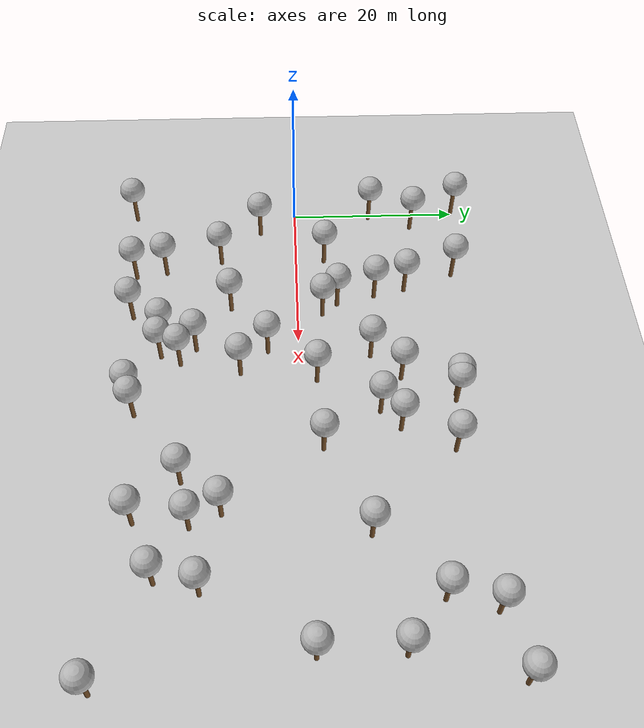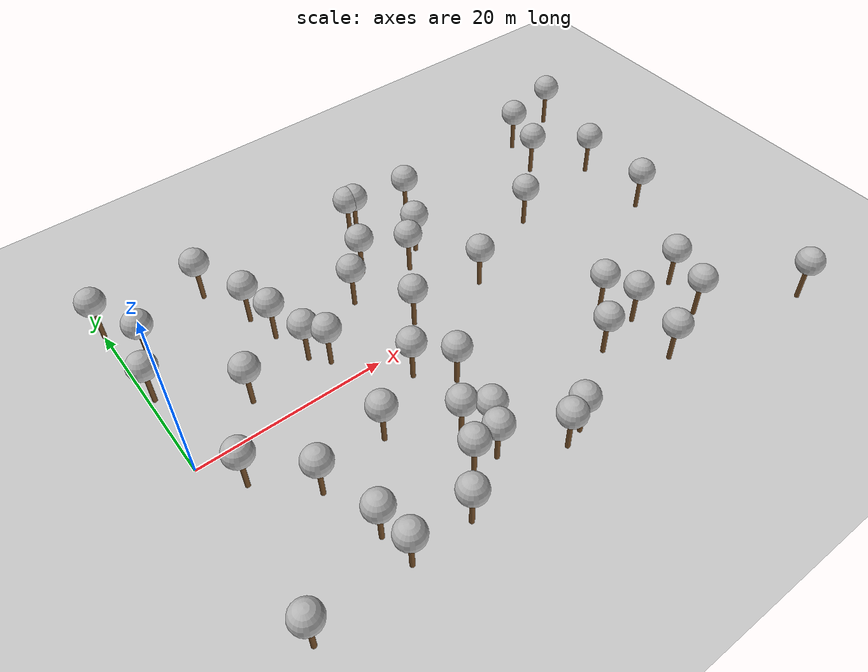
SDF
<sdf version='1.7'>
            <world name='default'>
                <light name='sun' type='directional'>
                <cast_shadows>1</cast_shadows>
                <pose>0 0 10 0 -0 0</pose>
                <diffuse>0.8 0.8 0.8 1</diffuse>
                <specular>0.2 0.2 0.2 1</specular>
                <attenuation>
                    <range>1000</range>
                    <constant>0.9</constant>
                    <linear>0.01</linear>
                    <quadratic>0.001</quadratic>
                </attenuation>
                <direction>-0.5 0.1 -0.9</direction>
                <spot>
                    <inner_angle>0</inner_angle>
                    <outer_angle>0</outer_angle>
                    <falloff>0</falloff>
                </spot>
                </light>
                <model name='ground_plane'>
                <static>1</static>
                <link name='link'>
                    <collision name='collision'>
                    <geometry>
                        <plane>
                        <normal>0 0 1</normal>
                        <size>100 100</size>
                        </plane>
                    </geometry>
                    <surface>
                        <contact>
                        <collide_bitmask>65535</collide_bitmask>
                        <ode/>
                        </contact>
                        <friction>
                        <ode>
                            <mu>100</mu>
                            <mu2>50</mu2>
                        </ode>
                        <torsional>
                            <ode/>
                        </torsional>
                        </friction>
                        <bounce/>
                    </surface>
                    <max_contacts>10</max_contacts>
                    </collision>
                    <visual name='visual'>
                    <cast_shadows>0</cast_shadows>
                    <geometry>
                        <plane>
                        <normal>0 0 1</normal>
                        <size>100 100</size>
                        </plane>
                    </geometry>
                    <material>
                        <script>
                        <uri>file://media/materials/scripts/gazebo.material</uri>
                        <name>Gazebo/Grey</name>
                        </script>
                    </material>
                    </visual>
                    <self_collide>0</self_collide>
                    <enable_wind>0</enable_wind>
                    <kinematic>0</kinematic>
                </link>
                </model>
                <gravity>0 0 -9.8</gravity>
                <magnetic_field>6e-06 2.3e-05 -4.2e-05</magnetic_field>
                <atmosphere type='adiabatic'/>
                <physics type='ode'>
                <max_step_size>0.001</max_step_size>
                <real_time_factor>1</real_time_factor>
                <real_time_update_rate>1000</real_time_update_rate>
                </physics>
                <scene>
                <ambient>0.4 0.4 0.4 1</ambient>
                <background>0.7 0.7 0.7 1</background>
                <shadows>1</shadows>
                </scene>
                <wind/>
                <spherical_coordinates>
                <surface_model>EARTH_WGS84</surface_model>
                <latitude_deg>0</latitude_deg>
                <longitude_deg>0</longitude_deg>
                <elevation>0</elevation>
                <heading_deg>0</heading_deg>
                </spherical_coordinates>

    <model name='tree_simple498'>
      <static>1</static>
      <link name='link'>
        <pose frame=''>0 0 0.1 0 -0 0</pose>
        <collision name='collision_trunk'>
          <pose frame=''>0 0 2 0 -0 0</pose>
          <geometry>
            <cylinder>
              <radius>0.25</radius>
              <length>4</length>
            </cylinder>
          </geometry>
        </collision>
        <collision name='collision_treetop'>
          <pose frame=''>0 0 5.2 0 -0 0</pose>
          <geometry>
            <sphere>
              <radius>1.5</radius>
            </sphere>
          </geometry>
        </collision>
        <visual name='trunk'>
          <pose frame=''>0 0 2 0 -0 0</pose>
          <geometry>
            <cylinder>
              <radius>0.25</radius>
              <length>4</length>
            </cylinder>
          </geometry>
          <material>
            <script>
              <uri>model://tree_simple/scripts</uri>
              <uri>model://tree_simple/materials/textures</uri>
              <name>TreeSimple/Trunk</name>
            </script>
          </material>
        </visual>
        <visual name='treetop'>
          <pose frame=''>0 0 5.2 0 -0 0</pose>
          <geometry>
            <sphere>
              <radius>1.5</radius>
            </sphere>
          </geometry>
          <material>
            <script>
              <uri>model://tree_simple/scripts</uri>
              <uri>model://tree_simple/materials/textures</uri>
              <name>TreeSimple/Treetop</name>
            </script>
          </material>
        </visual>
        <self_collide>0</self_collide>
        <kinematic>0</kinematic>
      </link>
      <pose frame=''>0.0 20.0 0 0 -0 0</pose>
    </model>
        <model name='tree_simple497'>
      <static>1</static>
      <link name='link'>
        <pose frame=''>0 0 0.1 0 -0 0</pose>
        <collision name='collision_trunk'>
          <pose frame=''>0 0 2 0 -0 0</pose>
          <geometry>
            <cylinder>
              <radius>0.25</radius>
              <length>4</length>
            </cylinder>
          </geometry>
        </collision>
        <collision name='collision_treetop'>
          <pose frame=''>0 0 5.2 0 -0 0</pose>
          <geometry>
            <sphere>
              <radius>1.5</radius>
            </sphere>
          </geometry>
        </collision>
        <visual name='trunk'>
          <pose frame=''>0 0 2 0 -0 0</pose>
          <geometry>
            <cylinder>
              <radius>0.25</radius>
              <length>4</length>
            </cylinder>
          </geometry>
          <material>
            <script>
              <uri>model://tree_simple/scripts</uri>
              <uri>model://tree_simple/materials/textures</uri>
              <name>TreeSimple/Trunk</name>
            </script>
          </material>
        </visual>
        <visual name='treetop'>
          <pose frame=''>0 0 5.2 0 -0 0</pose>
          <geometry>
            <sphere>
              <radius>1.5</radius>
            </sphere>
          </geometry>
          <material>
            <script>
              <uri>model://tree_simple/scripts</uri>
              <uri>model://tree_simple/materials/textures</uri>
              <name>TreeSimple/Treetop</name>
            </script>
          </material>
        </visual>
        <self_collide>0</self_collide>
        <kinematic>0</kinematic>
      </link>
      <pose frame=''>0.0 -20.0 0 0 -0 0</pose>
    </model>
        <model name='tree_simple496'>
      <static>1</static>
      <link name='link'>
        <pose frame=''>0 0 0.1 0 -0 0</pose>
        <collision name='collision_trunk'>
          <pose frame=''>0 0 2 0 -0 0</pose>
          <geometry>
            <cylinder>
              <radius>0.25</radius>
              <length>4</length>
            </cylinder>
          </geometry>
        </collision>
        <collision name='collision_treetop'>
          <pose frame=''>0 0 5.2 0 -0 0</pose>
          <geometry>
            <sphere>
              <radius>1.5</radius>
            </sphere>
          </geometry>
        </collision>
        <visual name='trunk'>
          <pose frame=''>0 0 2 0 -0 0</pose>
          <geometry>
            <cylinder>
              <radius>0.25</radius>
              <length>4</length>
            </cylinder>
          </geometry>
          <material>
            <script>
              <uri>model://tree_simple/scripts</uri>
              <uri>model://tree_simple/materials/textures</uri>
              <name>TreeSimple/Trunk</name>
            </script>
          </material>
        </visual>
        <visual name='treetop'>
          <pose frame=''>0 0 5.2 0 -0 0</pose>
          <geometry>
            <sphere>
              <radius>1.5</radius>
            </sphere>
          </geometry>
          <material>
            <script>
              <uri>model://tree_simple/scripts</uri>
              <uri>model://tree_simple/materials/textures</uri>
              <name>TreeSimple/Treetop</name>
            </script>
          </material>
        </visual>
        <self_collide>0</self_collide>
        <kinematic>0</kinematic>
      </link>
      <pose frame=''>60.0 20.0 0 0 -0 0</pose>
    </model>
        <model name='tree_simple495'>
      <static>1</static>
      <link name='link'>
        <pose frame=''>0 0 0.1 0 -0 0</pose>
        <collision name='collision_trunk'>
          <pose frame=''>0 0 2 0 -0 0</pose>
          <geometry>
            <cylinder>
              <radius>0.25</radius>
              <length>4</length>
            </cylinder>
          </geometry>
        </collision>
        <collision name='collision_treetop'>
          <pose frame=''>0 0 5.2 0 -0 0</pose>
          <geometry>
            <sphere>
              <radius>1.5</radius>
            </sphere>
          </geometry>
        </collision>
        <visual name='trunk'>
          <pose frame=''>0 0 2 0 -0 0</pose>
          <geometry>
            <cylinder>
              <radius>0.25</radius>
              <length>4</length>
            </cylinder>
          </geometry>
          <material>
            <script>
              <uri>model://tree_simple/scripts</uri>
              <uri>model://tree_simple/materials/textures</uri>
              <name>TreeSimple/Trunk</name>
            </script>
          </material>
        </visual>
        <visual name='treetop'>
          <pose frame=''>0 0 5.2 0 -0 0</pose>
          <geometry>
            <sphere>
              <radius>1.5</radius>
            </sphere>
          </geometry>
          <material>
            <script>
              <uri>model://tree_simple/scripts</uri>
              <uri>model://tree_simple/materials/textures</uri>
              <name>TreeSimple/Treetop</name>
            </script>
          </material>
        </visual>
        <self_collide>0</self_collide>
        <kinematic>0</kinematic>
      </link>
      <pose frame=''>60.0 -20.0 0 0 -0 0</pose>
    </model>
    <model name="tree_6_0"><pose frame="">29.99 -18.18 0 0 -0 0</pose><static>1</static><link name="link"><pose frame="">0 0 0.1 0 -0 0</pose><collision name="collision_trunk"><pose frame="">0 0 2 0 -0 0</pose><geometry><cylinder><radius>0.25</radius><length>4</length></cylinder></geometry></collision><collision name="collision_treetop"><pose frame="">0 0 5.2 0 -0 0</pose><geometry><sphere><radius>1.5</radius></sphere></geometry></collision><visual name="trunk"><pose frame="">0 0 2 0 -0 0</pose><geometry><cylinder><radius>0.25</radius><length>4</length></cylinder></geometry><material><script><uri>model://tree_simple/scripts</uri><uri>model://tree_simple/materials/textures</uri><name>TreeSimple/Trunk</name></script></material></visual><visual name="treetop"><pose frame="">0 0 5.2 0 -0 0</pose><geometry><sphere><radius>1.5</radius></sphere></geometry><material><script><uri>model://tree_simple/scripts</uri><uri>model://tree_simple/materials/textures</uri><name>TreeSimple/Treetop</name></script></material></visual><self_collide>0</self_collide><kinematic>0</kinematic></link></model><model name="tree_6_1"><pose frame="">19.44 -15.61 0 0 -0 0</pose><static>1</static><link name="link"><pose frame="">0 0 0.1 0 -0 0</pose><collision name="collision_trunk"><pose frame="">0 0 2 0 -0 0</pose><geometry><cylinder><radius>0.25</radius><length>4</length></cylinder></geometry></collision><collision name="collision_treetop"><pose frame="">0 0 5.2 0 -0 0</pose><geometry><sphere><radius>1.5</radius></sphere></geometry></collision><visual name="trunk"><pose frame="">0 0 2 0 -0 0</pose><geometry><cylinder><radius>0.25</radius><length>4</length></cylinder></geometry><material><script><uri>model://tree_simple/scripts</uri><uri>model://tree_simple/materials/textures</uri><name>TreeSimple/Trunk</name></script></material></visual><visual name="treetop"><pose frame="">0 0 5.2 0 -0 0</pose><geometry><sphere><radius>1.5</radius></sphere></geometry><material><script><uri>model://tree_simple/scripts</uri><uri>model://tree_simple/materials/textures</uri><name>TreeSimple/Treetop</name></script></material></visual><self_collide>0</self_collide><kinematic>0</kinematic></link></model><model name="tree_6_2"><pose frame="">22.59 8.17 0 0 -0 0</pose><static>1</static><link name="link"><pose frame="">0 0 0.1 0 -0 0</pose><collision name="collision_trunk"><pose frame="">0 0 2 0 -0 0</pose><geometry><cylinder><radius>0.25</radius><length>4</length></cylinder></geometry></collision><collision name="collision_treetop"><pose frame="">0 0 5.2 0 -0 0</pose><geometry><sphere><radius>1.5</radius></sphere></geometry></collision><visual name="trunk"><pose frame="">0 0 2 0 -0 0</pose><geometry><cylinder><radius>0.25</radius><length>4</length></cylinder></geometry><material><script><uri>model://tree_simple/scripts</uri><uri>model://tree_simple/materials/textures</uri><name>TreeSimple/Trunk</name></script></material></visual><visual name="treetop"><pose frame="">0 0 5.2 0 -0 0</pose><geometry><sphere><radius>1.5</radius></sphere></geometry><material><script><uri>model://tree_simple/scripts</uri><uri>model://tree_simple/materials/textures</uri><name>TreeSimple/Treetop</name></script></material></visual><self_collide>0</self_collide><kinematic>0</kinematic></link></model><model name="tree_6_3"><pose frame="">16.29 2.93 0 0 -0 0</pose><static>1</static><link name="link"><pose frame="">0 0 0.1 0 -0 0</pose><collision name="collision_trunk"><pose frame="">0 0 2 0 -0 0</pose><geometry><cylinder><radius>0.25</radius><length>4</length></cylinder></geometry></collision><collision name="collision_treetop"><pose frame="">0 0 5.2 0 -0 0</pose><geometry><sphere><radius>1.5</radius></sphere></geometry></collision><visual name="trunk"><pose frame="">0 0 2 0 -0 0</pose><geometry><cylinder><radius>0.25</radius><length>4</length></cylinder></geometry><material><script><uri>model://tree_simple/scripts</uri><uri>model://tree_simple/materials/textures</uri><name>TreeSimple/Trunk</name></script></material></visual><visual name="treetop"><pose frame="">0 0 5.2 0 -0 0</pose><geometry><sphere><radius>1.5</radius></sphere></geometry><material><script><uri>model://tree_simple/scripts</uri><uri>model://tree_simple/materials/textures</uri><name>TreeSimple/Treetop</name></script></material></visual><self_collide>0</self_collide><kinematic>0</kinematic></link></model><model name="tree_6_4"><pose frame="">10.53 18.81 0 0 -0 0</pose><static>1</static><link name="link"><pose frame="">0 0 0.1 0 -0 0</pose><collision name="collision_trunk"><pose frame="">0 0 2 0 -0 0</pose><geometry><cylinder><radius>0.25</radius><length>4</length></cylinder></geometry></collision><collision name="collision_treetop"><pose frame="">0 0 5.2 0 -0 0</pose><geometry><sphere><radius>1.5</radius></sphere></geometry></collision><visual name="trunk"><pose frame="">0 0 2 0 -0 0</pose><geometry><cylinder><radius>0.25</radius><length>4</length></cylinder></geometry><material><script><uri>model://tree_simple/scripts</uri><uri>model://tree_simple/materials/textures</uri><name>TreeSimple/Trunk</name></script></material></visual><visual name="treetop"><pose frame="">0 0 5.2 0 -0 0</pose><geometry><sphere><radius>1.5</radius></sphere></geometry><material><script><uri>model://tree_simple/scripts</uri><uri>model://tree_simple/materials/textures</uri><name>TreeSimple/Treetop</name></script></material></visual><self_collide>0</self_collide><kinematic>0</kinematic></link></model><model name="tree_6_5"><pose frame="">22.09 -15.66 0 0 -0 0</pose><static>1</static><link name="link"><pose frame="">0 0 0.1 0 -0 0</pose><collision name="collision_trunk"><pose frame="">0 0 2 0 -0 0</pose><geometry><cylinder><radius>0.25</radius><length>4</length></cylinder></geometry></collision><collision name="collision_treetop"><pose frame="">0 0 5.2 0 -0 0</pose><geometry><sphere><radius>1.5</radius></sphere></geometry></collision><visual name="trunk"><pose frame="">0 0 2 0 -0 0</pose><geometry><cylinder><radius>0.25</radius><length>4</length></cylinder></geometry><material><script><uri>model://tree_simple/scripts</uri><uri>model://tree_simple/materials/textures</uri><name>TreeSimple/Trunk</name></script></material></visual><visual name="treetop"><pose frame="">0 0 5.2 0 -0 0</pose><geometry><sphere><radius>1.5</radius></sphere></geometry><material><script><uri>model://tree_simple/scripts</uri><uri>model://tree_simple/materials/textures</uri><name>TreeSimple/Treetop</name></script></material></visual><self_collide>0</self_collide><kinematic>0</kinematic></link></model><model name="tree_6_6"><pose frame="">21.16 -11.69 0 0 -0 0</pose><static>1</static><link name="link"><pose frame="">0 0 0.1 0 -0 0</pose><collision name="collision_trunk"><pose frame="">0 0 2 0 -0 0</pose><geometry><cylinder><radius>0.25</radius><length>4</length></cylinder></geometry></collision><collision name="collision_treetop"><pose frame="">0 0 5.2 0 -0 0</pose><geometry><sphere><radius>1.5</radius></sphere></geometry></collision><visual name="trunk"><pose frame="">0 0 2 0 -0 0</pose><geometry><cylinder><radius>0.25</radius><length>4</length></cylinder></geometry><material><script><uri>model://tree_simple/scripts</uri><uri>model://tree_simple/materials/textures</uri><name>TreeSimple/Trunk</name></script></material></visual><visual name="treetop"><pose frame="">0 0 5.2 0 -0 0</pose><geometry><sphere><radius>1.5</radius></sphere></geometry><material><script><uri>model://tree_simple/scripts</uri><uri>model://tree_simple/materials/textures</uri><name>TreeSimple/Treetop</name></script></material></visual><self_collide>0</self_collide><kinematic>0</kinematic></link></model><model name="tree_6_7"><pose frame="">28.1 17.32 0 0 -0 0</pose><static>1</static><link name="link"><pose frame="">0 0 0.1 0 -0 0</pose><collision name="collision_trunk"><pose frame="">0 0 2 0 -0 0</pose><geometry><cylinder><radius>0.25</radius><length>4</length></cylinder></geometry></collision><collision name="collision_treetop"><pose frame="">0 0 5.2 0 -0 0</pose><geometry><sphere><radius>1.5</radius></sphere></geometry></collision><visual name="trunk"><pose frame="">0 0 2 0 -0 0</pose><geometry><cylinder><radius>0.25</radius><length>4</length></cylinder></geometry><material><script><uri>model://tree_simple/scripts</uri><uri>model://tree_simple/materials/textures</uri><name>TreeSimple/Trunk</name></script></material></visual><visual name="treetop"><pose frame="">0 0 5.2 0 -0 0</pose><geometry><sphere><radius>1.5</radius></sphere></geometry><material><script><uri>model://tree_simple/scripts</uri><uri>model://tree_simple/materials/textures</uri><name>TreeSimple/Treetop</name></script></material></visual><self_collide>0</self_collide><kinematic>0</kinematic></link></model><model name="tree_6_8"><pose frame="">25.76 11.4 0 0 -0 0</pose><static>1</static><link name="link"><pose frame="">0 0 0.1 0 -0 0</pose><collision name="collision_trunk"><pose frame="">0 0 2 0 -0 0</pose><geometry><cylinder><radius>0.25</radius><length>4</length></cylinder></geometry></collision><collision name="collision_treetop"><pose frame="">0 0 5.2 0 -0 0</pose><geometry><sphere><radius>1.5</radius></sphere></geometry></collision><visual name="trunk"><pose frame="">0 0 2 0 -0 0</pose><geometry><cylinder><radius>0.25</radius><length>4</length></cylinder></geometry><material><script><uri>model://tree_simple/scripts</uri><uri>model://tree_simple/materials/textures</uri><name>TreeSimple/Trunk</name></script></material></visual><visual name="treetop"><pose frame="">0 0 5.2 0 -0 0</pose><geometry><sphere><radius>1.5</radius></sphere></geometry><material><script><uri>model://tree_simple/scripts</uri><uri>model://tree_simple/materials/textures</uri><name>TreeSimple/Treetop</name></script></material></visual><self_collide>0</self_collide><kinematic>0</kinematic></link></model><model name="tree_6_9"><pose frame="">15.23 -7.77 0 0 -0 0</pose><static>1</static><link name="link"><pose frame="">0 0 0.1 0 -0 0</pose><collision name="collision_trunk"><pose frame="">0 0 2 0 -0 0</pose><geometry><cylinder><radius>0.25</radius><length>4</length></cylinder></geometry></collision><collision name="collision_treetop"><pose frame="">0 0 5.2 0 -0 0</pose><geometry><sphere><radius>1.5</radius></sphere></geometry></collision><visual name="trunk"><pose frame="">0 0 2 0 -0 0</pose><geometry><cylinder><radius>0.25</radius><length>4</length></cylinder></geometry><material><script><uri>model://tree_simple/scripts</uri><uri>model://tree_simple/materials/textures</uri><name>TreeSimple/Trunk</name></script></material></visual><visual name="treetop"><pose frame="">0 0 5.2 0 -0 0</pose><geometry><sphere><radius>1.5</radius></sphere></geometry><material><script><uri>model://tree_simple/scripts</uri><uri>model://tree_simple/materials/textures</uri><name>TreeSimple/Treetop</name></script></material></visual><self_collide>0</self_collide><kinematic>0</kinematic></link></model><model name="tree_6_10"><pose frame="">23.18 -13.41 0 0 -0 0</pose><static>1</static><link name="link"><pose frame="">0 0 0.1 0 -0 0</pose><collision name="collision_trunk"><pose frame="">0 0 2 0 -0 0</pose><geometry><cylinder><radius>0.25</radius><length>4</length></cylinder></geometry></collision><collision name="collision_treetop"><pose frame="">0 0 5.2 0 -0 0</pose><geometry><sphere><radius>1.5</radius></sphere></geometry></collision><visual name="trunk"><pose frame="">0 0 2 0 -0 0</pose><geometry><cylinder><radius>0.25</radius><length>4</length></cylinder></geometry><material><script><uri>model://tree_simple/scripts</uri><uri>model://tree_simple/materials/textures</uri><name>TreeSimple/Trunk</name></script></material></visual><visual name="treetop"><pose frame="">0 0 5.2 0 -0 0</pose><geometry><sphere><radius>1.5</radius></sphere></geometry><material><script><uri>model://tree_simple/scripts</uri><uri>model://tree_simple/materials/textures</uri><name>TreeSimple/Treetop</name></script></material></visual><self_collide>0</self_collide><kinematic>0</kinematic></link></model><model name="tree_6_11"><pose frame="">2.95 -4.31 0 0 -0 0</pose><static>1</static><link name="link"><pose frame="">0 0 0.1 0 -0 0</pose><collision name="collision_trunk"><pose frame="">0 0 2 0 -0 0</pose><geometry><cylinder><radius>0.25</radius><length>4</length></cylinder></geometry></collision><collision name="collision_treetop"><pose frame="">0 0 5.2 0 -0 0</pose><geometry><sphere><radius>1.5</radius></sphere></geometry></collision><visual name="trunk"><pose frame="">0 0 2 0 -0 0</pose><geometry><cylinder><radius>0.25</radius><length>4</length></cylinder></geometry><material><script><uri>model://tree_simple/scripts</uri><uri>model://tree_simple/materials/textures</uri><name>TreeSimple/Trunk</name></script></material></visual><visual name="treetop"><pose frame="">0 0 5.2 0 -0 0</pose><geometry><sphere><radius>1.5</radius></sphere></geometry><material><script><uri>model://tree_simple/scripts</uri><uri>model://tree_simple/materials/textures</uri><name>TreeSimple/Treetop</name></script></material></visual><self_collide>0</self_collide><kinematic>0</kinematic></link></model><model name="tree_6_12"><pose frame="">7.76 -9.1 0 0 -0 0</pose><static>1</static><link name="link"><pose frame="">0 0 0.1 0 -0 0</pose><collision name="collision_trunk"><pose frame="">0 0 2 0 -0 0</pose><geometry><cylinder><radius>0.25</radius><length>4</length></cylinder></geometry></collision><collision name="collision_treetop"><pose frame="">0 0 5.2 0 -0 0</pose><geometry><sphere><radius>1.5</radius></sphere></geometry></collision><visual name="trunk"><pose frame="">0 0 2 0 -0 0</pose><geometry><cylinder><radius>0.25</radius><length>4</length></cylinder></geometry><material><script><uri>model://tree_simple/scripts</uri><uri>model://tree_simple/materials/textures</uri><name>TreeSimple/Trunk</name></script></material></visual><visual name="treetop"><pose frame="">0 0 5.2 0 -0 0</pose><geometry><sphere><radius>1.5</radius></sphere></geometry><material><script><uri>model://tree_simple/scripts</uri><uri>model://tree_simple/materials/textures</uri><name>TreeSimple/Treetop</name></script></material></visual><self_collide>0</self_collide><kinematic>0</kinematic></link></model><model name="tree_6_13"><pose frame="">24.65 -6.59 0 0 -0 0</pose><static>1</static><link name="link"><pose frame="">0 0 0.1 0 -0 0</pose><collision name="collision_trunk"><pose frame="">0 0 2 0 -0 0</pose><geometry><cylinder><radius>0.25</radius><length>4</length></cylinder></geometry></collision><collision name="collision_treetop"><pose frame="">0 0 5.2 0 -0 0</pose><geometry><sphere><radius>1.5</radius></sphere></geometry></collision><visual name="trunk"><pose frame="">0 0 2 0 -0 0</pose><geometry><cylinder><radius>0.25</radius><length>4</length></cylinder></geometry><material><script><uri>model://tree_simple/scripts</uri><uri>model://tree_simple/materials/textures</uri><name>TreeSimple/Trunk</name></script></material></visual><visual name="treetop"><pose frame="">0 0 5.2 0 -0 0</pose><geometry><sphere><radius>1.5</radius></sphere></geometry><material><script><uri>model://tree_simple/scripts</uri><uri>model://tree_simple/materials/textures</uri><name>TreeSimple/Treetop</name></script></material></visual><self_collide>0</self_collide><kinematic>0</kinematic></link></model><model name="tree_6_14"><pose frame="">43.72 -11.57 0 0 -0 0</pose><static>1</static><link name="link"><pose frame="">0 0 0.1 0 -0 0</pose><collision name="collision_trunk"><pose frame="">0 0 2 0 -0 0</pose><geometry><cylinder><radius>0.25</radius><length>4</length></cylinder></geometry></collision><collision name="collision_treetop"><pose frame="">0 0 5.2 0 -0 0</pose><geometry><sphere><radius>1.5</radius></sphere></geometry></collision><visual name="trunk"><pose frame="">0 0 2 0 -0 0</pose><geometry><cylinder><radius>0.25</radius><length>4</length></cylinder></geometry><material><script><uri>model://tree_simple/scripts</uri><uri>model://tree_simple/materials/textures</uri><name>TreeSimple/Trunk</name></script></material></visual><visual name="treetop"><pose frame="">0 0 5.2 0 -0 0</pose><geometry><sphere><radius>1.5</radius></sphere></geometry><material><script><uri>model://tree_simple/scripts</uri><uri>model://tree_simple/materials/textures</uri><name>TreeSimple/Treetop</name></script></material></visual><self_collide>0</self_collide><kinematic>0</kinematic></link></model><model name="tree_6_15"><pose frame="">43.01 -17.36 0 0 -0 0</pose><static>1</static><link name="link"><pose frame="">0 0 0.1 0 -0 0</pose><collision name="collision_trunk"><pose frame="">0 0 2 0 -0 0</pose><geometry><cylinder><radius>0.25</radius><length>4</length></cylinder></geometry></collision><collision name="collision_treetop"><pose frame="">0 0 5.2 0 -0 0</pose><geometry><sphere><radius>1.5</radius></sphere></geometry></collision><visual name="trunk"><pose frame="">0 0 2 0 -0 0</pose><geometry><cylinder><radius>0.25</radius><length>4</length></cylinder></geometry><material><script><uri>model://tree_simple/scripts</uri><uri>model://tree_simple/materials/textures</uri><name>TreeSimple/Trunk</name></script></material></visual><visual name="treetop"><pose frame="">0 0 5.2 0 -0 0</pose><geometry><sphere><radius>1.5</radius></sphere></geometry><material><script><uri>model://tree_simple/scripts</uri><uri>model://tree_simple/materials/textures</uri><name>TreeSimple/Treetop</name></script></material></visual><self_collide>0</self_collide><kinematic>0</kinematic></link></model><model name="tree_6_16"><pose frame="">2.39 14.52 0 0 -0 0</pose><static>1</static><link name="link"><pose frame="">0 0 0.1 0 -0 0</pose><collision name="collision_trunk"><pose frame="">0 0 2 0 -0 0</pose><geometry><cylinder><radius>0.25</radius><length>4</length></cylinder></geometry></collision><collision name="collision_treetop"><pose frame="">0 0 5.2 0 -0 0</pose><geometry><sphere><radius>1.5</radius></sphere></geometry></collision><visual name="trunk"><pose frame="">0 0 2 0 -0 0</pose><geometry><cylinder><radius>0.25</radius><length>4</length></cylinder></geometry><material><script><uri>model://tree_simple/scripts</uri><uri>model://tree_simple/materials/textures</uri><name>TreeSimple/Trunk</name></script></material></visual><visual name="treetop"><pose frame="">0 0 5.2 0 -0 0</pose><geometry><sphere><radius>1.5</radius></sphere></geometry><material><script><uri>model://tree_simple/scripts</uri><uri>model://tree_simple/materials/textures</uri><name>TreeSimple/Treetop</name></script></material></visual><self_collide>0</self_collide><kinematic>0</kinematic></link></model><model name="tree_6_17"><pose frame="">57.2 0.8 0 0 -0 0</pose><static>1</static><link name="link"><pose frame="">0 0 0.1 0 -0 0</pose><collision name="collision_trunk"><pose frame="">0 0 2 0 -0 0</pose><geometry><cylinder><radius>0.25</radius><length>4</length></cylinder></geometry></collision><collision name="collision_treetop"><pose frame="">0 0 5.2 0 -0 0</pose><geometry><sphere><radius>1.5</radius></sphere></geometry></collision><visual name="trunk"><pose frame="">0 0 2 0 -0 0</pose><geometry><cylinder><radius>0.25</radius><length>4</length></cylinder></geometry><material><script><uri>model://tree_simple/scripts</uri><uri>model://tree_simple/materials/textures</uri><name>TreeSimple/Trunk</name></script></material></visual><visual name="treetop"><pose frame="">0 0 5.2 0 -0 0</pose><geometry><sphere><radius>1.5</radius></sphere></geometry><material><script><uri>model://tree_simple/scripts</uri><uri>model://tree_simple/materials/textures</uri><name>TreeSimple/Treetop</name></script></material></visual><self_collide>0</self_collide><kinematic>0</kinematic></link></model><model name="tree_6_18"><pose frame="">9.91 -19.33 0 0 -0 0</pose><static>1</static><link name="link"><pose frame="">0 0 0.1 0 -0 0</pose><collision name="collision_trunk"><pose frame="">0 0 2 0 -0 0</pose><geometry><cylinder><radius>0.25</radius><length>4</length></cylinder></geometry></collision><collision name="collision_treetop"><pose frame="">0 0 5.2 0 -0 0</pose><geometry><sphere><radius>1.5</radius></sphere></geometry></collision><visual name="trunk"><pose frame="">0 0 2 0 -0 0</pose><geometry><cylinder><radius>0.25</radius><length>4</length></cylinder></geometry><material><script><uri>model://tree_simple/scripts</uri><uri>model://tree_simple/materials/textures</uri><name>TreeSimple/Trunk</name></script></material></visual><visual name="treetop"><pose frame="">0 0 5.2 0 -0 0</pose><geometry><sphere><radius>1.5</radius></sphere></geometry><material><script><uri>model://tree_simple/scripts</uri><uri>model://tree_simple/materials/textures</uri><name>TreeSimple/Treetop</name></script></material></visual><self_collide>0</self_collide><kinematic>0</kinematic></link></model><model name="tree_6_19"><pose frame="">0.55 9.39 0 0 -0 0</pose><static>1</static><link name="link"><pose frame="">0 0 0.1 0 -0 0</pose><collision name="collision_trunk"><pose frame="">0 0 2 0 -0 0</pose><geometry><cylinder><radius>0.25</radius><length>4</length></cylinder></geometry></collision><collision name="collision_treetop"><pose frame="">0 0 5.2 0 -0 0</pose><geometry><sphere><radius>1.5</radius></sphere></geometry></collision><visual name="trunk"><pose frame="">0 0 2 0 -0 0</pose><geometry><cylinder><radius>0.25</radius><length>4</length></cylinder></geometry><material><script><uri>model://tree_simple/scripts</uri><uri>model://tree_simple/materials/textures</uri><name>TreeSimple/Trunk</name></script></material></visual><visual name="treetop"><pose frame="">0 0 5.2 0 -0 0</pose><geometry><sphere><radius>1.5</radius></sphere></geometry><material><script><uri>model://tree_simple/scripts</uri><uri>model://tree_simple/materials/textures</uri><name>TreeSimple/Treetop</name></script></material></visual><self_collide>0</self_collide><kinematic>0</kinematic></link></model><model name="tree_6_20"><pose frame="">32.51 10.82 0 0 -0 0</pose><static>1</static><link name="link"><pose frame="">0 0 0.1 0 -0 0</pose><collision name="collision_trunk"><pose frame="">0 0 2 0 -0 0</pose><geometry><cylinder><radius>0.25</radius><length>4</length></cylinder></geometry></collision><collision name="collision_treetop"><pose frame="">0 0 5.2 0 -0 0</pose><geometry><sphere><radius>1.5</radius></sphere></geometry></collision><visual name="trunk"><pose frame="">0 0 2 0 -0 0</pose><geometry><cylinder><radius>0.25</radius><length>4</length></cylinder></geometry><material><script><uri>model://tree_simple/scripts</uri><uri>model://tree_simple/materials/textures</uri><name>TreeSimple/Trunk</name></script></material></visual><visual name="treetop"><pose frame="">0 0 5.2 0 -0 0</pose><geometry><sphere><radius>1.5</radius></sphere></geometry><material><script><uri>model://tree_simple/scripts</uri><uri>model://tree_simple/materials/textures</uri><name>TreeSimple/Treetop</name></script></material></visual><self_collide>0</self_collide><kinematic>0</kinematic></link></model>
    <model name="tree_1_21">
  <pose frame="">27.92 -18.76 0 0 -0 0</pose>
  <static>1</static>
  <link name="link">
    <pose frame="">0 0 0.1 0 -0 0</pose>
    <collision name="collision_trunk"><pose frame="">0 0 2 0 -0 0</pose><geometry><cylinder><radius>0.25</radius><length>4</length></cylinder></geometry></collision>
    <collision name="collision_treetop"><pose frame="">0 0 5.2 0 -0 0</pose><geometry><sphere><radius>1.5</radius></sphere></geometry></collision>
    <visual name="trunk"><pose frame="">0 0 2 0 -0 0</pose><geometry><cylinder><radius>0.25</radius><length>4</length></cylinder></geometry><material><script><uri>model://tree_simple/scripts</uri><uri>model://tree_simple/materials/textures</uri><name>TreeSimple/Trunk</name></script></material></visual>
    <visual name="treetop"><pose frame="">0 0 5.2 0 -0 0</pose><geometry><sphere><radius>1.5</radius></sphere></geometry><material><script><uri>model://tree_simple/scripts</uri><uri>model://tree_simple/materials/textures</uri><name>TreeSimple/Treetop</name></script></material></visual>
    <self_collide>0</self_collide><kinematic>0</kinematic>
  </link>
</model>
<model name="tree_1_22">
  <pose frame="">14.81 4.73 0 0 -0 0</pose>
  <static>1</static>
  <link name="link">
    <pose frame="">0 0 0.1 0 -0 0</pose>
    <collision name="collision_trunk"><pose frame="">0 0 2 0 -0 0</pose><geometry><cylinder><radius>0.25</radius><length>4</length></cylinder></geometry></collision>
    <collision name="collision_treetop"><pose frame="">0 0 5.2 0 -0 0</pose><geometry><sphere><radius>1.5</radius></sphere></geometry></collision>
    <visual name="trunk"><pose frame="">0 0 2 0 -0 0</pose><geometry><cylinder><radius>0.25</radius><length>4</length></cylinder></geometry><material><script><uri>model://tree_simple/scripts</uri><uri>model://tree_simple/materials/textures</uri><name>TreeSimple/Trunk</name></script></material></visual>
    <visual name="treetop"><pose frame="">0 0 5.2 0 -0 0</pose><geometry><sphere><radius>1.5</radius></sphere></geometry><material><script><uri>model://tree_simple/scripts</uri><uri>model://tree_simple/materials/textures</uri><name>TreeSimple/Treetop</name></script></material></visual>
    <self_collide>0</self_collide><kinematic>0</kinematic>
  </link>
</model>
<model name="tree_1_23">
  <pose frame="">50.73 -10.28 0 0 -0 0</pose>
  <static>1</static>
  <link name="link">
    <pose frame="">0 0 0.1 0 -0 0</pose>
    <collision name="collision_trunk"><pose frame="">0 0 2 0 -0 0</pose><geometry><cylinder><radius>0.25</radius><length>4</length></cylinder></geometry></collision>
    <collision name="collision_treetop"><pose frame="">0 0 5.2 0 -0 0</pose><geometry><sphere><radius>1.5</radius></sphere></geometry></collision>
    <visual name="trunk"><pose frame="">0 0 2 0 -0 0</pose><geometry><cylinder><radius>0.25</radius><length>4</length></cylinder></geometry><material><script><uri>model://tree_simple/scripts</uri><uri>model://tree_simple/materials/textures</uri><name>TreeSimple/Trunk</name></script></material></visual>
    <visual name="treetop"><pose frame="">0 0 5.2 0 -0 0</pose><geometry><sphere><radius>1.5</radius></sphere></geometry><material><script><uri>model://tree_simple/scripts</uri><uri>model://tree_simple/materials/textures</uri><name>TreeSimple/Treetop</name></script></material></visual>
    <self_collide>0</self_collide><kinematic>0</kinematic>
  </link>
</model>
<model name="tree_1_24">
  <pose frame="">35.27 16.45 0 0 -0 0</pose>
  <static>1</static>
  <link name="link">
    <pose frame="">0 0 0.1 0 -0 0</pose>
    <collision name="collision_trunk"><pose frame="">0 0 2 0 -0 0</pose><geometry><cylinder><radius>0.25</radius><length>4</length></cylinder></geometry></collision>
    <collision name="collision_treetop"><pose frame="">0 0 5.2 0 -0 0</pose><geometry><sphere><radius>1.5</radius></sphere></geometry></collision>
    <visual name="trunk"><pose frame="">0 0 2 0 -0 0</pose><geometry><cylinder><radius>0.25</radius><length>4</length></cylinder></geometry><material><script><uri>model://tree_simple/scripts</uri><uri>model://tree_simple/materials/textures</uri><name>TreeSimple/Trunk</name></script></material></visual>
    <visual name="treetop"><pose frame="">0 0 5.2 0 -0 0</pose><geometry><sphere><radius>1.5</radius></sphere></geometry><material><script><uri>model://tree_simple/scripts</uri><uri>model://tree_simple/materials/textures</uri><name>TreeSimple/Treetop</name></script></material></visual>
    <self_collide>0</self_collide><kinematic>0</kinematic>
  </link>
</model>
<model name="tree_1_25">
  <pose frame="">21.64 -3.49 0 0 -0 0</pose>
  <static>1</static>
  <link name="link">
    <pose frame="">0 0 0.1 0 -0 0</pose>
    <collision name="collision_trunk"><pose frame="">0 0 2 0 -0 0</pose><geometry><cylinder><radius>0.25</radius><length>4</length></cylinder></geometry></collision>
    <collision name="collision_treetop"><pose frame="">0 0 5.2 0 -0 0</pose><geometry><sphere><radius>1.5</radius></sphere></geometry></collision>
    <visual name="trunk"><pose frame="">0 0 2 0 -0 0</pose><geometry><cylinder><radius>0.25</radius><length>4</length></cylinder></geometry><material><script><uri>model://tree_simple/scripts</uri><uri>model://tree_simple/materials/textures</uri><name>TreeSimple/Trunk</name></script></material></visual>
    <visual name="treetop"><pose frame="">0 0 5.2 0 -0 0</pose><geometry><sphere><radius>1.5</radius></sphere></geometry><material><script><uri>model://tree_simple/scripts</uri><uri>model://tree_simple/materials/textures</uri><name>TreeSimple/Treetop</name></script></material></visual>
    <self_collide>0</self_collide><kinematic>0</kinematic>
  </link>
</model>
<model name="tree_1_26">
  <pose frame="">57.18 9.27 0 0 -0 0</pose>
  <static>1</static>
  <link name="link">
    <pose frame="">0 0 0.1 0 -0 0</pose>
    <collision name="collision_trunk"><pose frame="">0 0 2 0 -0 0</pose><geometry><cylinder><radius>0.25</radius><length>4</length></cylinder></geometry></collision>
    <collision name="collision_treetop"><pose frame="">0 0 5.2 0 -0 0</pose><geometry><sphere><radius>1.5</radius></sphere></geometry></collision>
    <visual name="trunk"><pose frame="">0 0 2 0 -0 0</pose><geometry><cylinder><radius>0.25</radius><length>4</length></cylinder></geometry><material><script><uri>model://tree_simple/scripts</uri><uri>model://tree_simple/materials/textures</uri><name>TreeSimple/Trunk</name></script></material></visual>
    <visual name="treetop"><pose frame="">0 0 5.2 0 -0 0</pose><geometry><sphere><radius>1.5</radius></sphere></geometry><material><script><uri>model://tree_simple/scripts</uri><uri>model://tree_simple/materials/textures</uri><name>TreeSimple/Treetop</name></script></material></visual>
    <self_collide>0</self_collide><kinematic>0</kinematic>
  </link>
</model>
<model name="tree_1_27">
  <pose frame="">12.79 12.84 0 0 -0 0</pose>
  <static>1</static>
  <link name="link">
    <pose frame="">0 0 0.1 0 -0 0</pose>
    <collision name="collision_trunk"><pose frame="">0 0 2 0 -0 0</pose><geometry><cylinder><radius>0.25</radius><length>4</length></cylinder></geometry></collision>
    <collision name="collision_treetop"><pose frame="">0 0 5.2 0 -0 0</pose><geometry><sphere><radius>1.5</radius></sphere></geometry></collision>
    <visual name="trunk"><pose frame="">0 0 2 0 -0 0</pose><geometry><cylinder><radius>0.25</radius><length>4</length></cylinder></geometry><material><script><uri>model://tree_simple/scripts</uri><uri>model://tree_simple/materials/textures</uri><name>TreeSimple/Trunk</name></script></material></visual>
    <visual name="treetop"><pose frame="">0 0 5.2 0 -0 0</pose><geometry><sphere><radius>1.5</radius></sphere></geometry><material><script><uri>model://tree_simple/scripts</uri><uri>model://tree_simple/materials/textures</uri><name>TreeSimple/Treetop</name></script></material></visual>
    <self_collide>0</self_collide><kinematic>0</kinematic>
  </link>
</model>
<model name="tree_1_28">
  <pose frame="">38.46 -12.67 0 0 -0 0</pose>
  <static>1</static>
  <link name="link">
    <pose frame="">0 0 0.1 0 -0 0</pose>
    <collision name="collision_trunk"><pose frame="">0 0 2 0 -0 0</pose><geometry><cylinder><radius>0.25</radius><length>4</length></cylinder></geometry></collision>
    <collision name="collision_treetop"><pose frame="">0 0 5.2 0 -0 0</pose><geometry><sphere><radius>1.5</radius></sphere></geometry></collision>
    <visual name="trunk"><pose frame="">0 0 2 0 -0 0</pose><geometry><cylinder><radius>0.25</radius><length>4</length></cylinder></geometry><material><script><uri>model://tree_simple/scripts</uri><uri>model://tree_simple/materials/textures</uri><name>TreeSimple/Trunk</name></script></material></visual>
    <visual name="treetop"><pose frame="">0 0 5.2 0 -0 0</pose><geometry><sphere><radius>1.5</radius></sphere></geometry><material><script><uri>model://tree_simple/scripts</uri><uri>model://tree_simple/materials/textures</uri><name>TreeSimple/Treetop</name></script></material></visual>
    <self_collide>0</self_collide><kinematic>0</kinematic>
  </link>
</model>
<model name="tree_1_29">
  <pose frame="">25.83 1.98 0 0 -0 0</pose>
  <static>1</static>
  <link name="link">
    <pose frame="">0 0 0.1 0 -0 0</pose>
    <collision name="collision_trunk"><pose frame="">0 0 2 0 -0 0</pose><geometry><cylinder><radius>0.25</radius><length>4</length></cylinder></geometry></collision>
    <collision name="collision_treetop"><pose frame="">0 0 5.2 0 -0 0</pose><geometry><sphere><radius>1.5</radius></sphere></geometry></collision>
    <visual name="trunk"><pose frame="">0 0 2 0 -0 0</pose><geometry><cylinder><radius>0.25</radius><length>4</length></cylinder></geometry><material><script><uri>model://tree_simple/scripts</uri><uri>model://tree_simple/materials/textures</uri><name>TreeSimple/Trunk</name></script></material></visual>
    <visual name="treetop"><pose frame="">0 0 5.2 0 -0 0</pose><geometry><sphere><radius>1.5</radius></sphere></geometry><material><script><uri>model://tree_simple/scripts</uri><uri>model://tree_simple/materials/textures</uri><name>TreeSimple/Treetop</name></script></material></visual>
    <self_collide>0</self_collide><kinematic>0</kinematic>
  </link>
</model>
<model name="tree_1_30">
  <pose frame="">53.24 18.39 0 0 -0 0</pose>
  <static>1</static>
  <link name="link">
    <pose frame="">0 0 0.1 0 -0 0</pose>
    <collision name="collision_trunk"><pose frame="">0 0 2 0 -0 0</pose><geometry><cylinder><radius>0.25</radius><length>4</length></cylinder></geometry></collision>
    <collision name="collision_treetop"><pose frame="">0 0 5.2 0 -0 0</pose><geometry><sphere><radius>1.5</radius></sphere></geometry></collision>
    <visual name="trunk"><pose frame="">0 0 2 0 -0 0</pose><geometry><cylinder><radius>0.25</radius><length>4</length></cylinder></geometry><material><script><uri>model://tree_simple/scripts</uri><uri>model://tree_simple/materials/textures</uri><name>TreeSimple/Trunk</name></script></material></visual>
    <visual name="treetop"><pose frame="">0 0 5.2 0 -0 0</pose><geometry><sphere><radius>1.5</radius></sphere></geometry><material><script><uri>model://tree_simple/scripts</uri><uri>model://tree_simple/materials/textures</uri><name>TreeSimple/Treetop</name></script></material></visual>
    <self_collide>0</self_collide><kinematic>0</kinematic>
  </link>
</model>
<model name="tree_1_31">
  <pose frame="">9.37 -15.72 0 0 -0 0</pose>
  <static>1</static>
  <link name="link">
    <pose frame="">0 0 0.1 0 -0 0</pose>
    <collision name="collision_trunk"><pose frame="">0 0 2 0 -0 0</pose><geometry><cylinder><radius>0.25</radius><length>4</length></cylinder></geometry></collision>
    <collision name="collision_treetop"><pose frame="">0 0 5.2 0 -0 0</pose><geometry><sphere><radius>1.5</radius></sphere></geometry></collision>
    <visual name="trunk"><pose frame="">0 0 2 0 -0 0</pose><geometry><cylinder><radius>0.25</radius><length>4</length></cylinder></geometry><material><script><uri>model://tree_simple/scripts</uri><uri>model://tree_simple/materials/textures</uri><name>TreeSimple/Trunk</name></script></material></visual>
    <visual name="treetop"><pose frame="">0 0 5.2 0 -0 0</pose><geometry><sphere><radius>1.5</radius></sphere></geometry><material><script><uri>model://tree_simple/scripts</uri><uri>model://tree_simple/materials/textures</uri><name>TreeSimple/Treetop</name></script></material></visual>
    <self_collide>0</self_collide><kinematic>0</kinematic>
  </link>
</model>
<model name="tree_1_32">
  <pose frame="">44.96 6.81 0 0 -0 0</pose>
  <static>1</static>
  <link name="link">
    <pose frame="">0 0 0.1 0 -0 0</pose>
    <collision name="collision_trunk"><pose frame="">0 0 2 0 -0 0</pose><geometry><cylinder><radius>0.25</radius><length>4</length></cylinder></geometry></collision>
    <collision name="collision_treetop"><pose frame="">0 0 5.2 0 -0 0</pose><geometry><sphere><radius>1.5</radius></sphere></geometry></collision>
    <visual name="trunk"><pose frame="">0 0 2 0 -0 0</pose><geometry><cylinder><radius>0.25</radius><length>4</length></cylinder></geometry><material><script><uri>model://tree_simple/scripts</uri><uri>model://tree_simple/materials/textures</uri><name>TreeSimple/Trunk</name></script></material></visual>
    <visual name="treetop"><pose frame="">0 0 5.2 0 -0 0</pose><geometry><sphere><radius>1.5</radius></sphere></geometry><material><script><uri>model://tree_simple/scripts</uri><uri>model://tree_simple/materials/textures</uri><name>TreeSimple/Treetop</name></script></material></visual>
    <self_collide>0</self_collide><kinematic>0</kinematic>
  </link>
</model>
<model name="tree_1_33">
  <pose frame="">30.18 8.76 0 0 -0 0</pose>
  <static>1</static>
  <link name="link">
    <pose frame="">0 0 0.1 0 -0 0</pose>
    <collision name="collision_trunk"><pose frame="">0 0 2 0 -0 0</pose><geometry><cylinder><radius>0.25</radius><length>4</length></cylinder></geometry></collision>
    <collision name="collision_treetop"><pose frame="">0 0 5.2 0 -0 0</pose><geometry><sphere><radius>1.5</radius></sphere></geometry></collision>
    <visual name="trunk"><pose frame="">0 0 2 0 -0 0</pose><geometry><cylinder><radius>0.25</radius><length>4</length></cylinder></geometry><material><script><uri>model://tree_simple/scripts</uri><uri>model://tree_simple/materials/textures</uri><name>TreeSimple/Trunk</name></script></material></visual>
    <visual name="treetop"><pose frame="">0 0 5.2 0 -0 0</pose><geometry><sphere><radius>1.5</radius></sphere></geometry><material><script><uri>model://tree_simple/scripts</uri><uri>model://tree_simple/materials/textures</uri><name>TreeSimple/Treetop</name></script></material></visual>
    <self_collide>0</self_collide><kinematic>0</kinematic>
  </link>
</model>
<model name="tree_1_34">
  <pose frame="">16.25 -19.28 0 0 -0 0</pose>
  <static>1</static>
  <link name="link">
    <pose frame="">0 0 0.1 0 -0 0</pose>
    <collision name="collision_trunk"><pose frame="">0 0 2 0 -0 0</pose><geometry><cylinder><radius>0.25</radius><length>4</length></cylinder></geometry></collision>
    <collision name="collision_treetop"><pose frame="">0 0 5.2 0 -0 0</pose><geometry><sphere><radius>1.5</radius></sphere></geometry></collision>
    <visual name="trunk"><pose frame="">0 0 2 0 -0 0</pose><geometry><cylinder><radius>0.25</radius><length>4</length></cylinder></geometry><material><script><uri>model://tree_simple/scripts</uri><uri>model://tree_simple/materials/textures</uri><name>TreeSimple/Trunk</name></script></material></visual>
    <visual name="treetop"><pose frame="">0 0 5.2 0 -0 0</pose><geometry><sphere><radius>1.5</radius></sphere></geometry><material><script><uri>model://tree_simple/scripts</uri><uri>model://tree_simple/materials/textures</uri><name>TreeSimple/Treetop</name></script></material></visual>
    <self_collide>0</self_collide><kinematic>0</kinematic>
  </link>
</model>
<model name="tree_1_35">
  <pose frame="">51.87 13.42 0 0 -0 0</pose>
  <static>1</static>
  <link name="link">
    <pose frame="">0 0 0.1 0 -0 0</pose>
    <collision name="collision_trunk"><pose frame="">0 0 2 0 -0 0</pose><geometry><cylinder><radius>0.25</radius><length>4</length></cylinder></geometry></collision>
    <collision name="collision_treetop"><pose frame="">0 0 5.2 0 -0 0</pose><geometry><sphere><radius>1.5</radius></sphere></geometry></collision>
    <visual name="trunk"><pose frame="">0 0 2 0 -0 0</pose><geometry><cylinder><radius>0.25</radius><length>4</length></cylinder></geometry><material><script><uri>model://tree_simple/scripts</uri><uri>model://tree_simple/materials/textures</uri><name>TreeSimple/Trunk</name></script></material></visual>
    <visual name="treetop"><pose frame="">0 0 5.2 0 -0 0</pose><geometry><sphere><radius>1.5</radius></sphere></geometry><material><script><uri>model://tree_simple/scripts</uri><uri>model://tree_simple/materials/textures</uri><name>TreeSimple/Treetop</name></script></material></visual>
    <self_collide>0</self_collide><kinematic>0</kinematic>
  </link>
</model>
<model name="tree_1_36">
  <pose frame="">7.84 3.45 0 0 -0 0</pose>
  <static>1</static>
  <link name="link">
    <pose frame="">0 0 0.1 0 -0 0</pose>
    <collision name="collision_trunk"><pose frame="">0 0 2 0 -0 0</pose><geometry><cylinder><radius>0.25</radius><length>4</length></cylinder></geometry></collision>
    <collision name="collision_treetop"><pose frame="">0 0 5.2 0 -0 0</pose><geometry><sphere><radius>1.5</radius></sphere></geometry></collision>
    <visual name="trunk"><pose frame="">0 0 2 0 -0 0</pose><geometry><cylinder><radius>0.25</radius><length>4</length></cylinder></geometry><material><script><uri>model://tree_simple/scripts</uri><uri>model://tree_simple/materials/textures</uri><name>TreeSimple/Trunk</name></script></material></visual>
    <visual name="treetop"><pose frame="">0 0 5.2 0 -0 0</pose><geometry><sphere><radius>1.5</radius></sphere></geometry><material><script><uri>model://tree_simple/scripts</uri><uri>model://tree_simple/materials/textures</uri><name>TreeSimple/Treetop</name></script></material></visual>
    <self_collide>0</self_collide><kinematic>0</kinematic>
  </link>
</model>
<model name="tree_1_37">
  <pose frame="">42.28 -8.34 0 0 -0 0</pose>
  <static>1</static>
  <link name="link">
    <pose frame="">0 0 0.1 0 -0 0</pose>
    <collision name="collision_trunk"><pose frame="">0 0 2 0 -0 0</pose><geometry><cylinder><radius>0.25</radius><length>4</length></cylinder></geometry></collision>
    <collision name="collision_treetop"><pose frame="">0 0 5.2 0 -0 0</pose><geometry><sphere><radius>1.5</radius></sphere></geometry></collision>
    <visual name="trunk"><pose frame="">0 0 2 0 -0 0</pose><geometry><cylinder><radius>0.25</radius><length>4</length></cylinder></geometry><material><script><uri>model://tree_simple/scripts</uri><uri>model://tree_simple/materials/textures</uri><name>TreeSimple/Trunk</name></script></material></visual>
    <visual name="treetop"><pose frame="">0 0 5.2 0 -0 0</pose><geometry><sphere><radius>1.5</radius></sphere></geometry><material><script><uri>model://tree_simple/scripts</uri><uri>model://tree_simple/materials/textures</uri><name>TreeSimple/Treetop</name></script></material></visual>
    <self_collide>0</self_collide><kinematic>0</kinematic>
  </link>
</model>
<model name="tree_1_38">
  <pose frame="">28.94 17.23 0 0 -0 0</pose>
  <static>1</static>
  <link name="link">
    <pose frame="">0 0 0.1 0 -0 0</pose>
    <collision name="collision_trunk"><pose frame="">0 0 2 0 -0 0</pose><geometry><cylinder><radius>0.25</radius><length>4</length></cylinder></geometry></collision>
    <collision name="collision_treetop"><pose frame="">0 0 5.2 0 -0 0</pose><geometry><sphere><radius>1.5</radius></sphere></geometry></collision>
    <visual name="trunk"><pose frame="">0 0 2 0 -0 0</pose><geometry><cylinder><radius>0.25</radius><length>4</length></cylinder></geometry><material><script><uri>model://tree_simple/scripts</uri><uri>model://tree_simple/materials/textures</uri><name>TreeSimple/Trunk</name></script></material></visual>
    <visual name="treetop"><pose frame="">0 0 5.2 0 -0 0</pose><geometry><sphere><radius>1.5</radius></sphere></geometry><material><script><uri>model://tree_simple/scripts</uri><uri>model://tree_simple/materials/textures</uri><name>TreeSimple/Treetop</name></script></material></visual>
    <self_collide>0</self_collide><kinematic>0</kinematic>
  </link>
</model>
<model name="tree_1_39">
  <pose frame="">13.67 9.18 0 0 -0 0</pose>
  <static>1</static>
  <link name="link">
    <pose frame="">0 0 0.1 0 -0 0</pose>
    <collision name="collision_trunk"><pose frame="">0 0 2 0 -0 0</pose><geometry><cylinder><radius>0.25</radius><length>4</length></cylinder></geometry></collision>
    <collision name="collision_treetop"><pose frame="">0 0 5.2 0 -0 0</pose><geometry><sphere><radius>1.5</radius></sphere></geometry></collision>
    <visual name="trunk"><pose frame="">0 0 2 0 -0 0</pose><geometry><cylinder><radius>0.25</radius><length>4</length></cylinder></geometry><material><script><uri>model://tree_simple/scripts</uri><uri>model://tree_simple/materials/textures</uri><name>TreeSimple/Trunk</name></script></material></visual>
    <visual name="treetop"><pose frame="">0 0 5.2 0 -0 0</pose><geometry><sphere><radius>1.5</radius></sphere></geometry><material><script><uri>model://tree_simple/scripts</uri><uri>model://tree_simple/materials/textures</uri><name>TreeSimple/Treetop</name></script></material></visual>
    <self_collide>0</self_collide><kinematic>0</kinematic>
  </link>
</model>
<model name="tree_1_40">
  <pose frame="">49.52 -14.82 0 0 -0 0</pose>
  <static>1</static>
  <link name="link">
    <pose frame="">0 0 0.1 0 -0 0</pose>
    <collision name="collision_trunk"><pose frame="">0 0 2 0 -0 0</pose><geometry><cylinder><radius>0.25</radius><length>4</length></cylinder></geometry></collision>
    <collision name="collision_treetop"><pose frame="">0 0 5.2 0 -0 0</pose><geometry><sphere><radius>1.5</radius></sphere></geometry></collision>
    <visual name="trunk"><pose frame="">0 0 2 0 -0 0</pose><geometry><cylinder><radius>0.25</radius><length>4</length></cylinder></geometry><material><script><uri>model://tree_simple/scripts</uri><uri>model://tree_simple/materials/textures</uri><name>TreeSimple/Trunk</name></script></material></visual>
    <visual name="treetop"><pose frame="">0 0 5.2 0 -0 0</pose><geometry><sphere><radius>1.5</radius></sphere></geometry><material><script><uri>model://tree_simple/scripts</uri><uri>model://tree_simple/materials/textures</uri><name>TreeSimple/Treetop</name></script></material></visual>
    <self_collide>0</self_collide><kinematic>0</kinematic>
  </link>
</model>
<model name="tree_1_41">
  <pose frame="">34.76 2.37 0 0 -0 0</pose>
  <static>1</static>
  <link name="link">
    <pose frame="">0 0 0.1 0 -0 0</pose>
    <collision name="collision_trunk"><pose frame="">0 0 2 0 -0 0</pose><geometry><cylinder><radius>0.25</radius><length>4</length></cylinder></geometry></collision>
    <collision name="collision_treetop"><pose frame="">0 0 5.2 0 -0 0</pose><geometry><sphere><radius>1.5</radius></sphere></geometry></collision>
    <visual name="trunk"><pose frame="">0 0 2 0 -0 0</pose><geometry><cylinder><radius>0.25</radius><length>4</length></cylinder></geometry><material><script><uri>model://tree_simple/scripts</uri><uri>model://tree_simple/materials/textures</uri><name>TreeSimple/Trunk</name></script></material></visual>
    <visual name="treetop"><pose frame="">0 0 5.2 0 -0 0</pose><geometry><sphere><radius>1.5</radius></sphere></geometry><material><script><uri>model://tree_simple/scripts</uri><uri>model://tree_simple/materials/textures</uri><name>TreeSimple/Treetop</name></script></material></visual>
    <self_collide>0</self_collide><kinematic>0</kinematic>
  </link>
</model>
            </world>
            </sdf>
